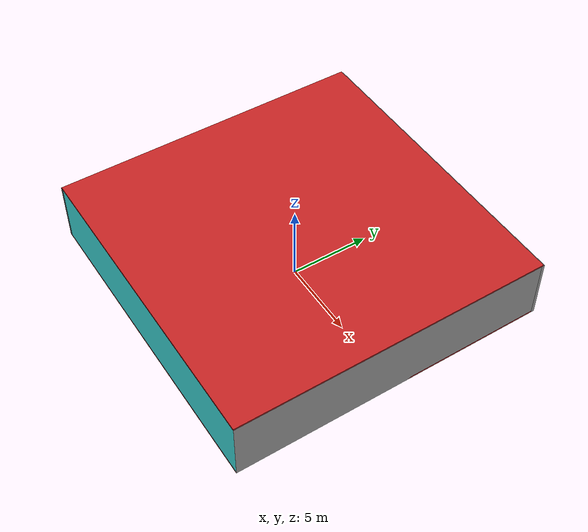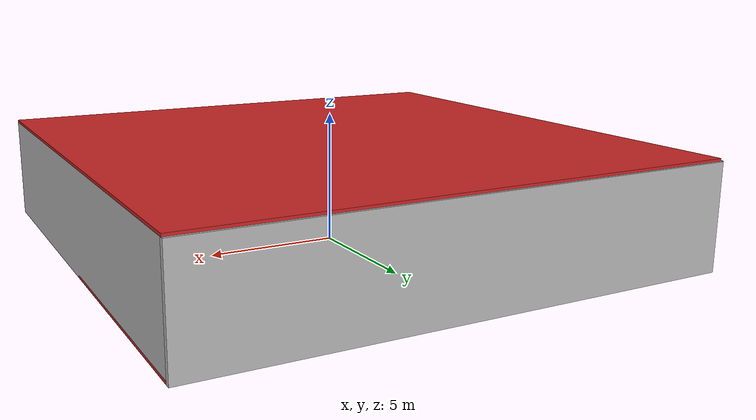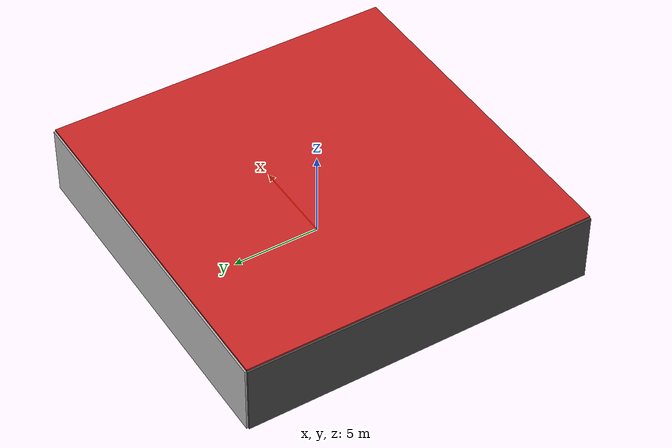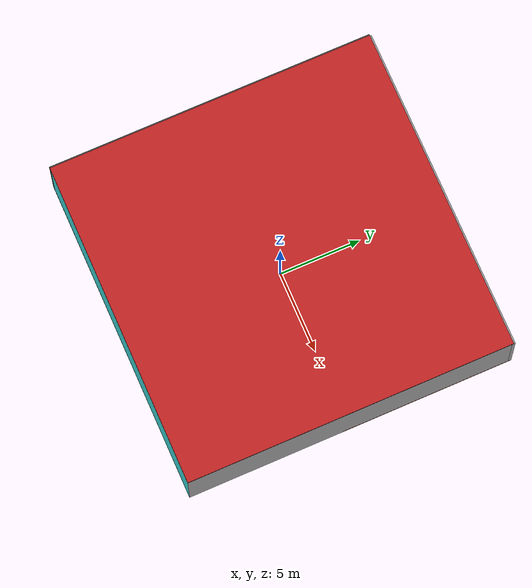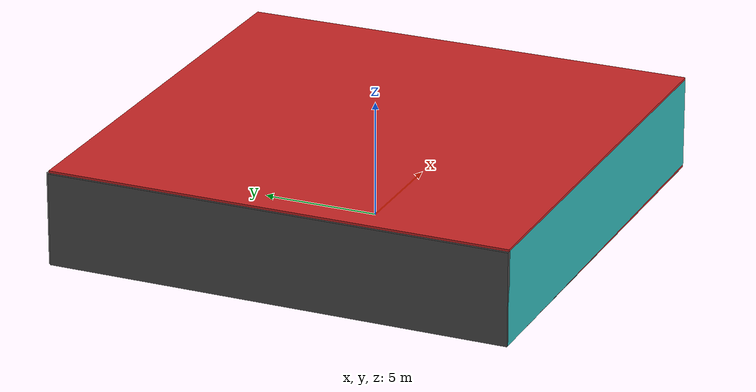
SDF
<sdf version="1.4">
 <world name="default">
  <physics type="ode">
   <max_step_size>0.001</max_step_size>
   <real_time_factor>1</real_time_factor>
   <real_time_update_rate>1000</real_time_update_rate>
   <gravity>0 0 -9.8</gravity>
  </physics>
  <scene><ambient>0.4 0.4 0.4 1</ambient><background>0.7 0.7 0.7 1</background><shadows>1</shadows></scene>
  <model name="Surrounding">
   <static>1</static>
   <link name="Ceiling">
    <collision name="Ceiling_Collision"><geometry><box><size>20 20 0.1</size></box></geometry></collision>
    <visual name="Ceiling_Visual">
     <geometry><box><size>20 20 0.1</size></box></geometry>
     <material>
      <script><uri>file://media/materials/scripts/gazebo.material</uri><name>Gazebo/RedGlow</name></script>
     </material>
    </visual>
    <pose>0 0 4.05 0 0 0</pose>
   </link>
   <link name="Wall_South">
    <collision name="Wall_South_Collision">
     <geometry><box><size>20 0 4</size></box></geometry>
     <pose>0 0 2 0 -0 0</pose>
    </collision>
    <visual name="Wall_South_Visual">
     <pose>0 0 2 0 -0 0</pose>
     <geometry><box><size>20 0 4</size></box></geometry>
     <material>
      <script>
       <uri>file://media/materials/scripts/gazebo.material</uri>
       <name>Gazebo/TurquoiseGlowOutline</name>
      </script>
     </material>
    </visual>
    <velocity_decay><linear>0</linear><angular>0</angular></velocity_decay>
    <pose>0 -10 0 0 -0 0</pose>
   </link>
   <link name="Wall_East">
    <collision name="Wall_21_Collision">
     <geometry><box><size>20 0 4</size></box></geometry>
     <pose>0 0 2 0 -0 0</pose>
    </collision>
    <visual name="Wall_21_Visual">
     <pose>0 0 2 0 -0 0</pose>
     <geometry><box><size>20 0 4</size></box></geometry>
     <material>
      <script><uri>file://media/materials/scripts/gazebo.material</uri><name>Gazebo/JointAnchor</name></script>
     </material>
    </visual>
    <velocity_decay><linear>0</linear><angular>0</angular></velocity_decay>
    <pose>10 0 0 0 -0 1.5708</pose>
   </link>
   <link name="Wall_North">
    <collision name="Wall_22_Collision">
     <geometry><box><size>20 0.2 4</size></box></geometry>
     <pose>0 0 2 0 -0 0</pose>
    </collision>
    <visual name="Wall_22_Visual">
     <pose>0 0 2 0 -0 0</pose>
     <geometry><box><size>20 0.2 4</size></box></geometry>
     <material>
      <script><uri>file://media/materials/scripts/gazebo.material</uri><name>Gazebo/PioneerBody</name></script>
     </material>
    </visual>
    <velocity_decay><linear>0</linear><angular>0</angular></velocity_decay>
    <pose>0 10 0 0 -0 0</pose>
   </link>
   <link name="Wall_West">
    <collision name="Wall_23_Collision">
     <geometry><box><size>20 0.2 4</size></box></geometry>
     <pose>0 0 2 0 -0 0</pose>
    </collision>
    <visual name="Wall_23_Visual">
     <pose>0 0 2 0 -0 0</pose>
     <geometry><box><size>20 0.2 4</size></box></geometry>
     <material>
      <script><uri>file://media/materials/scripts/gazebo.material</uri><name>Gazebo/Road</name></script>
     </material>
    </visual>
    <velocity_decay><linear>0</linear><angular>0</angular></velocity_decay>
    <pose>-10 0 0 0 0 -1.5708</pose>
   </link>
   <link name="Ground_link">
    <collision name="collision">
     <pose>0 0 .05 0 -0 0</pose>
     <geometry><box><size>20 20 0.1</size></box></geometry>
    </collision>
    <visual name="visual">
     <pose>0 0 .05 0 -0 0</pose>
     <geometry><box><size>20 20 0.1</size></box></geometry>
     <material>
      <script><uri>file://media/materials/scripts/gazebo.material</uri><name>Gazebo/RedGlow</name></script>
     </material>
    </visual>
   </link>
   <static>1</static>
  </model>
  <spherical_coordinates>
   <surface_model>EARTH_WGS84</surface_model>
   <latitude_deg>0</latitude_deg>
   <longitude_deg>0</longitude_deg>
   <elevation>0</elevation>
   <heading_deg>0</heading_deg>
  </spherical_coordinates>
  <light name="lightball_0" type="diffuse">
   <diffuse>0.8 0.8 0.8 1</diffuse>
   <specular>0.2 0.2 0.2 1</specular>
   <attenuation>
    <range>100</range>
    <constant>0.7</constant>
    <linear>0.01</linear>
    <quadratic>0.001</quadratic>
   </attenuation>
   <direction>-0.5 0.1 -0.9</direction>
   <pose>-0.601447084778 -3.38188280223 2.15210454328 0 0 0</pose>
  </light>
  <light name="lightball_1" type="diffuse">
   <diffuse>0.8 0.8 0.8 1</diffuse>
   <specular>0.2 0.2 0.2 1</specular>
   <attenuation>
    <range>100</range>
    <constant>0.7</constant>
    <linear>0.01</linear>
    <quadratic>0.001</quadratic>
   </attenuation>
   <direction>-0.5 0.1 -0.9</direction>
   <pose>0.656873533798 0.915872682241 0.809741658011 0 0 0</pose>
  </light>
  <light name="lightball_2" type="diffuse">
   <diffuse>0.8 0.8 0.8 1</diffuse>
   <specular>0.2 0.2 0.2 1</specular>
   <attenuation>
    <range>100</range>
    <constant>0.7</constant>
    <linear>0.01</linear>
    <quadratic>0.001</quadratic>
   </attenuation>
   <direction>-0.5 0.1 -0.9</direction>
   <pose>-2.59185508802 -6.71285260586 1.72450551132 0 0 0</pose>
  </light>
  <include>
   <uri>model://construction_cone</uri>
   <pose>-8.46269334857 -7.92161682617 0 0 0 1.12790102006</pose>
  </include>
  <include>
   <uri>model://robocup_3Dsim_goal</uri>
   <pose>-7.47155317762 -1.26446966236 0 0 0 2.01188898337</pose>
  </include>
  <include>
   <uri>model://textured_shapes</uri>
   <pose>-7.06048649434 4.33086728939 0 0 0 2.6455810968</pose>
  </include>
  <include>
   <uri>model://construction_cone</uri>
   <pose>-1.21515671112 -7.64696194956 0 0 0 1.22409859819</pose>
  </include>
  <include>
   <uri>model://construction_cone</uri>
   <pose>-0.598465928272 -0.537196036205 0 0 0 1.42376264233</pose>
  </include>
  <include>
   <uri>model://construction_cone</uri>
   <pose>1.24065997016 -8.53898246475 0 0 0 2.41002684147</pose>
  </include>
  <include>
   <uri>model://construction_cone</uri>
   <pose>5.03512015821 2.36659179213 0 0 0 0.53585395141</pose>
  </include>
  <include>
   <uri>model://construction_cone</uri>
   <pose>6.54169909053 1.19686360055 0 0 0 2.56083240362</pose>
  </include>
 </world>
</sdf>

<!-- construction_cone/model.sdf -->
<sdf version="1.5">
  <model name="Construction Cone">
    <link name="link">
      <collision name="collision">
        <geometry>
          <mesh>
            <scale>10 10 10</scale>
            <uri>file://isr-testbed/construction_cone/meshes/construction_cone.dae</uri>
          </mesh>
        </geometry>
      </collision>
      <visual name="visual">
        <geometry>
          <mesh>
            <scale>10 10 10</scale>
            <uri>file://isr-testbed/construction_cone/meshes/construction_cone.dae</uri>
          </mesh>
        </geometry>
      </visual>
    </link>
  </model>
</sdf>

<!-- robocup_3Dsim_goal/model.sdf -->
<sdf version="1.5">
  <model name="robocup_3d_goal">
    <static>true</static>
    <link name="left_post">
      <pose>0 1.05 0.45 0 0 0</pose>
      <collision name="collision">
        <geometry>
          <cylinder>
            <radius>0.05</radius>
            <length>0.9</length>
          </cylinder>
        </geometry>
      </collision>
      <visual name="visual">
        <geometry>
          <cylinder>
            <radius>0.05</radius>
            <length>0.9</length>
          </cylinder>
        </geometry>
        <material>
          <script>
            <uri>file://media/materials/scripts/gazebo.material</uri>
            <name>Gazebo/ZincYellow</name>
          </script>
        </material>
      </visual>
    </link>
    <link name="left_support_horiz_lower">
      <pose>0.30 1.05 0.01 0 0 0</pose>
      <collision name="collision">
        <geometry>
          <box>
            <size>0.50 0.02 0.02</size>
          </box>
        </geometry>
      </collision>
      <visual name="visual">
        <geometry>
          <box>
            <size>0.50 0.02 0.02</size>
          </box>
        </geometry>
        <material>
          <script>
            <uri>file://media/materials/scripts/gazebo.material</uri>
            <name>Gazebo/White</name>
          </script>
        </material>
      </visual>
    </link>
    <link name="left_support_horiz_upper">
      <pose>0.30 1.05 0.79 0 0 0</pose>
      <collision name="collision">
        <geometry>
          <box>
            <size>0.50 0.02 0.02</size>
          </box>
        </geometry>
      </collision>
      <visual name="visual">
        <geometry>
          <box>
            <size>0.50 0.02 0.02</size>
          </box>
        </geometry>
        <material>
          <script>
            <uri>file://media/materials/scripts/gazebo.material</uri>
            <name>Gazebo/White</name>
          </script>
        </material>
      </visual>
    </link>
    <link name="left_support_vertical">
      <pose>0.56 1.05 0.4 0 1.5708 0</pose>
      <collision name="collision">
        <geometry>
          <box>
            <size>0.80 0.02 0.02</size>
          </box>
        </geometry>
      </collision>
      <visual name="visual">
        <geometry>
          <box>
            <size>0.80 0.02 0.02</size>
          </box>
        </geometry>
        <material>
          <script>
            <uri>file://media/materials/scripts/gazebo.material</uri>
            <name>Gazebo/White</name>
          </script>
        </material>
      </visual>
    </link>
    <link name="right_support_horiz_lower">
      <pose>0.30 -1.05 0.01 0 0 0</pose>
      <collision name="collision">
        <geometry>
          <box>
            <size>0.50 0.02 0.02</size>
          </box>
        </geometry>
      </collision>
      <visual name="visual">
        <geometry>
          <box>
            <size>0.50 0.02 0.02</size>
          </box>
        </geometry>
        <material>
          <script>
            <uri>file://media/materials/scripts/gazebo.material</uri>
            <name>Gazebo/White</name>
          </script>
        </material>
      </visual>
    </link>
    <link name="right_support_horiz_upper">
      <pose>0.30 -1.05 0.79 0 0 0</pose>
      <collision name="collision">
        <geometry>
          <box>
            <size>0.50 0.02 0.02</size>
          </box>
        </geometry>
      </collision>
      <visual name="visual">
        <geometry>
          <box>
            <size>0.50 0.02 0.02</size>
          </box>
        </geometry>
        <material>
          <script>
            <uri>file://media/materials/scripts/gazebo.material</uri>
            <name>Gazebo/White</name>
          </script>
        </material>
      </visual>
    </link>
    <link name="right_support_vertical">
      <pose>0.56 -1.05 0.4 0 1.5708 0</pose>
      <collision name="collision">
        <geometry>
          <box>
            <size>0.80 0.02 0.02</size>
          </box>
        </geometry>
      </collision>
      <visual name="visual">
        <geometry>
          <box>
            <size>0.80 0.02 0.02</size>
          </box>
        </geometry>
        <material>
          <script>
            <uri>file://media/materials/scripts/gazebo.material</uri>
            <name>Gazebo/White</name>
          </script>
        </material>
      </visual>
    </link>
    <link name="center_support_horiz_lower">
      <pose>0.56 0 0.01 0 1.5708 0</pose>
      <collision name="collision">
        <geometry>
          <box>
            <size>0.02 2.08 0.02</size>
          </box>
        </geometry>
      </collision>
      <visual name="visual">
        <geometry>
          <box>
            <size>0.02 2.08 0.02</size>
          </box>
        </geometry>
        <material>
          <script>
            <uri>file://media/materials/scripts/gazebo.material</uri>
            <name>Gazebo/White</name>
          </script>
        </material>
      </visual>
    </link>
    <link name="center_support_horiz_upper">
      <pose>0.56 0 0.79 0 1.5708 0</pose>
      <collision name="collision">
        <geometry>
          <box>
            <size>0.02 2.08 0.02</size>
          </box>
        </geometry>
      </collision>
      <visual name="visual">
        <geometry>
          <box>
            <size>0.02 2.08 0.02</size>
          </box>
        </geometry>
        <material>
          <script>
            <uri>file://media/materials/scripts/gazebo.material</uri>
            <name>Gazebo/White</name>
          </script>
        </material>
      </visual>
    </link>
    <link name="right_post">
      <pose>0 -1.05 0.45 0 0 0</pose>
      <collision name="collision">
        <geometry>
          <cylinder>
            <radius>0.05</radius>
            <length>0.9</length>
          </cylinder>
        </geometry>
      </collision>
      <visual name="visual">
        <geometry>
          <cylinder>
            <radius>0.05</radius>
            <length>0.9</length>
          </cylinder>
        </geometry>
        <material>
          <script>
            <uri>file://media/materials/scripts/gazebo.material</uri>
            <name>Gazebo/ZincYellow</name>
          </script>
        </material>
      </visual>
    </link>
    <link name="crossbar">
      <pose>0 0 0.85 1.57 1.57 0</pose>
      <collision name="collision">
        <geometry>
          <cylinder>
            <radius>0.05</radius>
            <length>2.0</length>
          </cylinder>
        </geometry>
      </collision>
      <visual name="visual">
        <geometry>
          <cylinder>
            <radius>0.05</radius>
            <length>2.0</length>
          </cylinder>
        </geometry>
        <material>
          <script>
            <uri>file://media/materials/scripts/gazebo.material</uri>
            <name>Gazebo/ZincYellow</name>
          </script>
        </material>
      </visual>
    </link>
    <link name="center_net">
      <pose>0.56 0 0.40 0 0 0</pose>
      <collision name="collision">
        <geometry>
          <box>
            <size>0.01 2.1 0.80</size>
          </box>
        </geometry>
      </collision>
      <visual name="visual">
        <geometry>
          <box>
            <size>0.01 2.1 0.80</size>
          </box>
        </geometry>
        <material>
          <script>
            <uri>model://../model_source/models/robocup09_spl_field/materials/scripts/</uri>
            <uri>model://../model_source/models/robocup09_spl_field/materials/textures/</uri>
            <name>RoboCup/Net</name>
          </script>
        </material>
      </visual>
    </link>
    <link name="left_net">
      <pose>0.30 1.05 0.40 0 0 0</pose>
      <collision name="collision">
        <geometry>
          <box>
            <size>0.50 0.01 0.76</size>
          </box>
        </geometry>
      </collision>
      <visual name="visual">
        <geometry>
          <box>
            <size>0.50 0.01 0.76</size>
          </box>
        </geometry>
        <material>
          <script>
            <uri>model://../model_source/models/robocup09_spl_field/materials/scripts/</uri>
            <uri>model://../model_source/models/robocup09_spl_field/materials/textures/</uri>
            <name>RoboCup/Net</name>
          </script>
        </material>
      </visual>
    </link>
    <link name="right_net">
      <pose>0.30 -1.05 0.40 0 0 0</pose>
      <collision name="collision">
        <geometry>
          <box>
            <size>0.50 0.01 0.76</size>
          </box>
        </geometry>
      </collision>
      <visual name="visual">
        <geometry>
          <box>
            <size>0.50 0.01 0.76</size>
          </box>
        </geometry>
        <material>
          <script>
            <uri>model://../model_source/models/robocup09_spl_field/materials/scripts/</uri>
            <uri>model://../model_source/models/robocup09_spl_field/materials/textures/</uri>
            <name>RoboCup/Net</name>
          </script>
        </material>
      </visual>
    </link>
  </model>
</sdf>

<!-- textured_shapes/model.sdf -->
<sdf version="1.6">
  <model name="textured_shapes">
    <pose>0 0 0.5 0 0 0</pose>
    <link name="box">
      <pose>0 -1.5 0 0 0 0</pose>
      <collision name="collision">
        <geometry>
          <box>
            <size>1 1 1</size>
          </box>
        </geometry>
      </collision>
      <visual name="visual">
        <geometry>
          <box>
            <size>1 1 1</size>
          </box>
        </geometry>
        <material>
          <script>
            <uri>model://../model_source/models/textured_shapes/materials/scripts</uri>
            <uri>model://../model_source/models/textured_shapes/materials/textures</uri>
            <name>TexturedShape/Squares</name>
          </script>
        </material>
      </visual>
    </link>
    <link name="sphere">
      <collision name="collision">
        <geometry>
          <sphere>
            <radius>0.5</radius>
          </sphere>
        </geometry>
      </collision>
      <visual name="visual">
        <geometry>
          <sphere>
            <radius>0.5</radius>
          </sphere>
        </geometry>
        <material>
          <script>
            <uri>model://../model_source/models/textured_shapes/materials/scripts</uri>
            <uri>model://../model_source/models/textured_shapes/materials/textures</uri>
            <name>TexturedShape/Squares</name>
          </script>
        </material>
      </visual>
    </link>
    <link name="cylinder">
      <pose>0 1.5 0 0 0 0</pose>
      <collision name="collision">
        <geometry>
          <cylinder>
            <radius>0.5</radius>
            <length>1</length>
          </cylinder>
        </geometry>
      </collision>
      <visual name="visual">
        <geometry>
          <cylinder>
            <radius>0.5</radius>
            <length>1</length>
          </cylinder>
        </geometry>
        <material>
          <script>
            <uri>model://../model_source/models/textured_shapes/materials/scripts</uri>
            <uri>model://../model_source/models/textured_shapes/materials/textures</uri>
            <name>TexturedShape/Squares</name>
          </script>
        </material>
      </visual>
    </link>
  </model>
</sdf>
